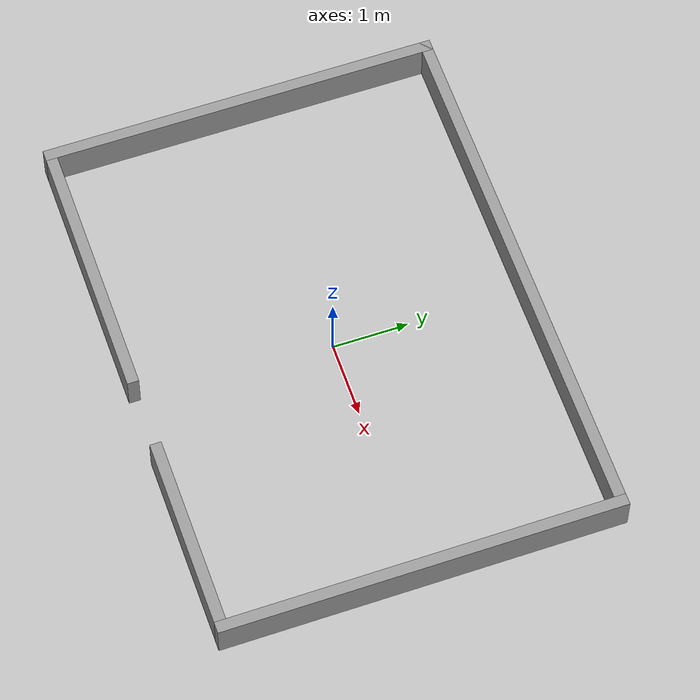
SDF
<?xml version='1.0'?>
<sdf version='1.7'>
  <model name='parede_aberta'>
    <pose>-0.08 -0.03 0 0 -0 0</pose>
    <link name='ParedeAberta_0'>
      <collision name='ParedeAberta_0_Collision'>
        <geometry>
          <box>
            <size>5.25 0.15 0.5</size>
          </box>
        </geometry>
        <pose>0 0 0.25 0 -0 0</pose>
      </collision>
      <visual name='ParedeAberta_0_Visual'>
        <pose>0 0 0.25 0 -0 0</pose>
        <geometry>
          <box>
            <size>5.25 0.15 0.5</size>
          </box>
        </geometry>
        <material>
          <script>
            <uri>file://media/materials/scripts/gazebo.material</uri>
            <name>Gazebo/Grey</name>
          </script>
          <ambient>0.466667 0.462745 0.482353 1</ambient>
        </material>
        <meta>
          <layer>0</layer>
        </meta>
      </visual>
      <pose>-3.5 -0 0 0 -0 1.5708</pose>
    </link>
    <link name='ParedeAberta_2'>
      <collision name='ParedeAberta_2_Collision'>
        <geometry>
          <box>
            <size>7 0.15 0.5</size>
          </box>
        </geometry>
        <pose>0 0 0.25 0 -0 0</pose>
      </collision>
      <visual name='ParedeAberta_2_Visual'>
        <pose>0 0 0.25 0 -0 0</pose>
        <geometry>
          <box>
            <size>7 0.15 0.5</size>
          </box>
        </geometry>
        <material>
          <script>
            <uri>file://media/materials/scripts/gazebo.material</uri>
            <name>Gazebo/Grey</name>
          </script>
          <ambient>0.466667 0.462745 0.482353 1</ambient>
        </material>
        <meta>
          <layer>0</layer>
        </meta>
      </visual>
      <pose>-0.075 2.55 0 0 -0 0</pose>
    </link>
    <link name='ParedeAberta_4'>
      <collision name='ParedeAberta_4Collision'>
        <geometry>
          <box>
            <size>5.25 0.15 0.5</size>
          </box>
        </geometry>
        <pose>0 0 0.25 0 -0 0</pose>
      </collision>
      <visual name='ParedeAberta_4Visual'>
        <pose>0 0 0.25 0 -0 0</pose>
        <geometry>
          <box>
            <size>5.25 0.15 0.5</size>
          </box>
        </geometry>
        <material>
          <script>
            <uri>file://media/materials/scripts/gazebo.material</uri>
            <name>Gazebo/Grey</name>
          </script>
          <ambient>0.466667 0.462745 0.482353 1</ambient>
        </material>
        <meta>
          <layer>0</layer>
        </meta>
      </visual>
      <pose>3.5 -0 0 0 -0 1.5708</pose>
    </link>
    <link name='ParedeAberta_6'>
      <pose>-0.065 -2.55 0 0 -0 3.14159</pose>
      <visual name='ParedeAberta_6_Visual_0'>
        <pose>-2.2375 0 0.25 0 -0 0</pose>
        <geometry>
          <box>
            <size>2.525 0.15 0.5</size>
          </box>
        </geometry>
        <material>
          <script>
            <uri>file://media/materials/scripts/gazebo.material</uri>
            <name>Gazebo/Grey</name>
          </script>
          <ambient>0.466667 0.462745 0.482353 1</ambient>
        </material>
        <meta>
          <layer>0</layer>
        </meta>
      </visual>
      <collision name='ParedeAberta_6_Collision_0'>
        <geometry>
          <box>
            <size>2.525 0.15 0.5</size>
          </box>
        </geometry>
        <pose>-2.2375 0 0.25 0 -0 0</pose>
      </collision>
      <visual name='ParedeAberta_6_Visual_1'>
        <pose>1.7125 0 0.25 0 -0 0</pose>
        <geometry>
          <box>
            <size>3.575 0.15 0.5</size>
          </box>
        </geometry>
        <material>
          <script>
            <uri>file://media/materials/scripts/gazebo.material</uri>
            <name>Gazebo/Grey</name>
          </script>
          <ambient>0.466667 0.462745 0.482353 1</ambient>
        </material>
        <meta>
          <layer>0</layer>
        </meta>
      </visual>
      <collision name='ParedeAberta_6_Collision_1'>
        <geometry>
          <box>
            <size>3.575 0.15 0.5</size>
          </box>
        </geometry>
        <pose>1.7125 0 0.25 0 -0 0</pose>
      </collision>
    </link>
    <static>1</static>
  </model>
</sdf>
